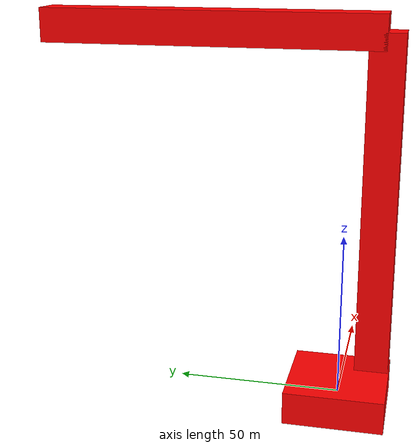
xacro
<?xml version="1.0"?>
<robot xmlns:xacro="http://www.ros.org/wiki/xacro" name="robot_arm">

    <link name="base_link">

    </link>

    <joint name="link_1_joint" type="continuous">
        <origin xyz="0.0 0.0 0.0" rpy="0.0 0.0 0.0"/>
        <parent link="base_link"/>
        <child link="link_1"/>
        <axis xyz="0.0 0.0 1.0"/>
    </joint>

    <!-- Obrotowa baza -->
    <link name="link_1">
        <inertial>
            <mass value="0.5"/>
            <origin xyz="0.0 0.0 50.0" rpy="0.0 0.0 0.0"/>
            <inertia ixx="0.0" ixy="0.0" ixz="0.0" iyy="0.0" iyz="0.0" izz="0.0"/>
        </inertial>
        <visual name="">
            <origin xyz="0.0 0.0 0.0" rpy="0.0 0.0 0.0"/>
            <geometry>
                <box size="30.0 30.0 10.0"/>
            </geometry>
            <material name="">
                <color rgba="1.0 0.0 0.0 1.0"/>
            </material>
        </visual>
        <collision>
            <origin xyz="0.0 0.0 0.0" rpy="0.0 0.0 0.0"/>
            <geometry>
                <box size="30.0 30.0 10.0"/>
            </geometry>
        </collision>
    </link>

    <joint name="link_2_joint" type="revolute">
        <origin xyz="0.0 -10.0 10.0" rpy="0.0 0.0 0.0"/>
        <parent link="link_1"/>
        <child link="link_2"/>
        <axis xyz="1.0 0.0 0.0"/>
        <limit lower="-1.0" upper="1.0" effort="10" velocity="10"/>
    </joint>

    <link name="link_2">
        <inertial>
            <origin xyz="0.0 0.0 50.0" rpy="0.0 0.0 0.0"/>
            <mass value="0.5"/>
            <inertia ixx="0.0" ixy="0.0" ixz="0.0" iyy="0.0" iyz="0.0" izz="0.0"/>
        </inertial>
        <visual name="">
            <origin xyz="0.0 0.0 50.0" rpy="0.0 0.0 0.0"/>
            <geometry>
                <box size="10.0 10.0 100.0"/>
            </geometry>
            <material name="">
                <color rgba="1.0 0.0 0.0 1.0"/>
            </material>
        </visual>
        <collision>
            <origin xyz="0.0 0.0 50.0" rpy="0.0 0.0 0.0"/>
            <geometry>
                <box size="10.0 10.0 100.0"/>
            </geometry>
        </collision>
    </link>

    <joint name="link_3_joint" type="revolute">
        <origin xyz="0.0 0.0 100.0" rpy="0.0 0.0 0.0"/>
        <parent link="link_2"/>
        <child link="link_3"/>
        <axis xyz="1.0 0.0 0.0"/>
        <limit lower="-1.0" upper="${pi/2}" effort="10" velocity="10"/>
    </joint>

    <link name="link_3">
        <inertial>
            <mass value="0.5"/>
            <origin xyz="0.0 50.0 0.0" rpy="0.0 0.0 0.0"/>
            <inertia ixx="0.0" ixy="0.0" ixz="0.0" iyy="0.0" iyz="0.0" izz="0.0"/>
        </inertial>
        <visual name="">
            <origin xyz="0.0 50.0 0.0" rpy="0.0 0.0 0.0"/>
            <geometry>
                <box size="10.0 100.0 10.0"/>
            </geometry>
            <material name="">
                <color rgba="1.0 0.0 0.0 1.0"/>
            </material>
        </visual>
        <collision>
            <origin xyz="0.0 50.0 0.0" rpy="0.0 0.0 0.0"/>
            <geometry>
                <box size="10.0 100.0 10.0"/>
            </geometry>
        </collision>
    </link>
</robot>
